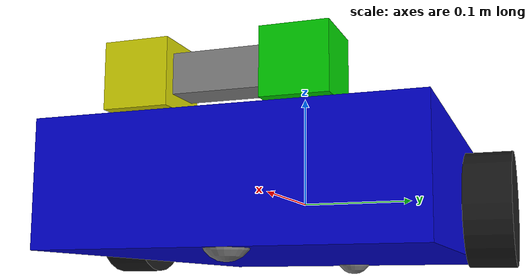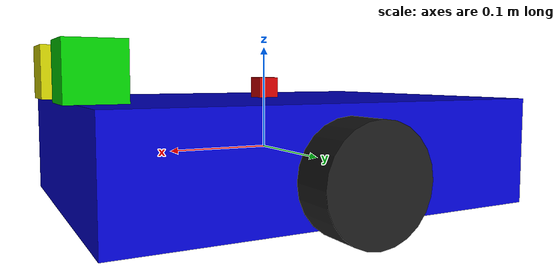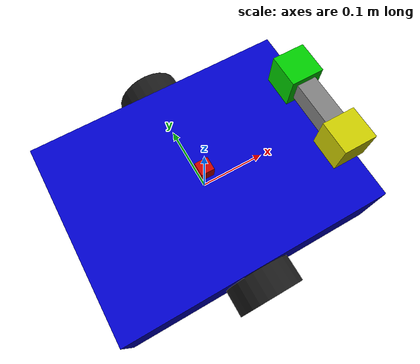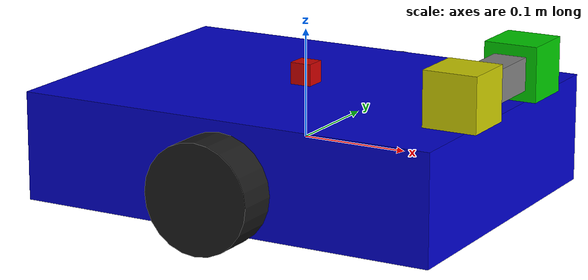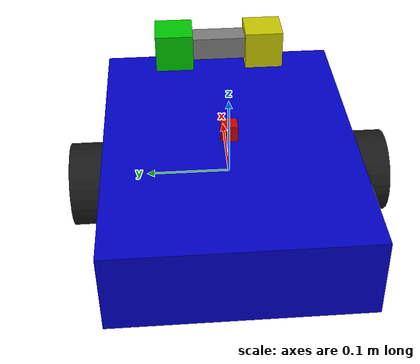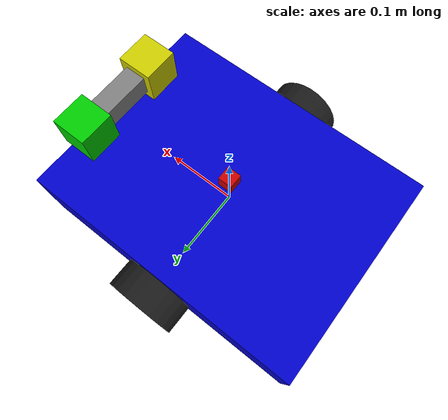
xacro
<?xml version="1.0"?>
<robot xmlns:xacro="http://www.ros.org/wiki/xacro" name="stereo_diff_drive_robot">

    <!-- Constants — add stereo_baseline here -->
    <xacro:property name="M_PI"             value="3.1415926535897931"/>
    <xacro:property name="base_width"       value="0.3"/>
    <xacro:property name="base_length"      value="0.4"/>
    <xacro:property name="base_height"      value="0.1"/>
    <xacro:property name="wheel_radius"     value="0.05"/>
    <xacro:property name="wheel_width"      value="0.04"/>
    <xacro:property name="caster_radius"    value="0.02"/>
    <xacro:property name="base_lift"        value="0.01"/>
    <xacro:property name="camera_link_size" value="0.05"/>
    <xacro:property name="imu_link_size"    value="0.02"/>
    <!-- TODO: add stereo_baseline property (12 cm) -->
    <xacro:property name="stereo_baseline"  value="0.12"/>

    <!-- Base Link -->
    <link name="base_link">
        <visual>
            <geometry>
                <box size="${base_length} ${base_width} ${base_height}"/>
            </geometry>
            <material name="blue">
                <color rgba="0.0 0.0 0.8 1.0"/>
            </material>
        </visual>
        <collision>
            <geometry>
                <box size="${base_length} ${base_width} ${base_height}"/>
            </geometry>
        </collision>
        <inertial>
            <origin xyz="0 0 0" rpy="0 0 0"/>
            <mass value="5.0"/>
            <inertia ixx="0.1" ixy="0.0" ixz="0.0" iyy="0.1" iyz="0.0" izz="0.1"/>
        </inertial>
    </link>

    <!-- IMU Link -->
    <link name="imu_link">
        <visual>
            <geometry>
                <box size="${imu_link_size} ${imu_link_size} ${imu_link_size}"/>
            </geometry>
            <material name="red">
                <color rgba="0.8 0.0 0.0 1.0"/>
            </material>
        </visual>
        <collision>
            <geometry>
                <box size="${imu_link_size} ${imu_link_size} ${imu_link_size}"/>
            </geometry>
        </collision>
        <inertial>
            <mass value="0.01"/>
            <inertia ixx="1e-6" ixy="0.0" ixz="0.0" iyy="1e-6" iyz="0.0" izz="1e-6"/>
        </inertial>
    </link>

    <joint name="imu_joint" type="fixed">
        <parent link="base_link"/>
        <child link="imu_link"/>
        <origin xyz="0 0 ${base_height/2 + imu_link_size/2}" rpy="0 0 0"/>
    </joint>

    <link name="camera_mount_link">
        <visual>
            <geometry>
                <box size="0.03 ${stereo_baseline + 0.04} 0.03"/>
            </geometry>
            <material name="grey">
                <color rgba="0.5 0.5 0.5 1.0"/>
            </material>
        </visual>
        <collision>
            <geometry>
                <box size="0.03 ${stereo_baseline + 0.04} 0.03"/>
            </geometry>
        </collision>
        <inertial>
            <mass value="0.1"/>
            <inertia ixx="1e-5" ixy="0.0" ixz="0.0" iyy="1e-5" iyz="0.0" izz="1e-5"/>
        </inertial>
    </link>

    <joint name="camera_mount_joint" type="fixed">
        <parent link="base_link"/>
        <child link="camera_mount_link"/>
        <origin xyz="${base_length/2 - 0.03/2} 0 ${base_height/2 + camera_link_size/2}" rpy="0 0 0"/>
    </joint>

    <!-- Left camera -->
    <link name="left_camera_link">
        <visual>
            <geometry>
                <box size="${camera_link_size} ${camera_link_size} ${camera_link_size}"/>
            </geometry>
            <material name="green">
                <color rgba="0.0 0.8 0.0 1.0"/>
            </material>
        </visual>
        <collision>
            <geometry>
                <box size="${camera_link_size} ${camera_link_size} ${camera_link_size}"/>
            </geometry>
        </collision>
        <inertial>
            <mass value="0.1"/>
            <inertia ixx="1e-6" ixy="0.0" ixz="0.0" iyy="1e-6" iyz="0.0" izz="1e-6"/>
        </inertial>
    </link>

    <joint name="left_camera_joint" type="fixed">
        <parent link="camera_mount_link"/>
        <child link="left_camera_link"/>
        <origin xyz="0 ${stereo_baseline/2} 0" rpy="0 0 0"/>
    </joint>

    <link name="left_camera_optical_frame"/>
    <joint name="left_camera_optical_joint" type="fixed">
        <parent link="left_camera_link"/>
        <child link="left_camera_optical_frame"/>
        <origin xyz="0 0 0" rpy="${-M_PI/2} 0 ${-M_PI/2}"/>
    </joint>

    <!-- Right camera -->
    <link name="right_camera_link">
        <visual>
            <geometry>
                <box size="${camera_link_size} ${camera_link_size} ${camera_link_size}"/>
            </geometry>
            <material name="yellow">
                <color rgba="0.8 0.8 0.0 1.0"/>
            </material>
        </visual>
        <collision>
            <geometry>
                <box size="${camera_link_size} ${camera_link_size} ${camera_link_size}"/>
            </geometry>
        </collision>
        <inertial>
            <mass value="0.1"/>
            <inertia ixx="1e-6" ixy="0.0" ixz="0.0" iyy="1e-6" iyz="0.0" izz="1e-6"/>
        </inertial>
    </link>

    <joint name="right_camera_joint" type="fixed">
        <parent link="camera_mount_link"/>
        <child link="right_camera_link"/>
        <origin xyz="0 ${-stereo_baseline/2} 0" rpy="0 0 0"/>
    </joint>

    <link name="right_camera_optical_frame"/>
    <joint name="right_camera_optical_joint" type="fixed">
        <parent link="right_camera_link"/>
        <child link="right_camera_optical_frame"/>
        <origin xyz="0 0 0" rpy="${-M_PI/2} 0 ${-M_PI/2}"/>
    </joint>

    <!-- Wheels -->

    <xacro:macro name="wheel" params="prefix reflect">
        <link name="${prefix}_wheel_link">
            <visual>
                <origin xyz="0 0 0" rpy="${M_PI/2} 0 0"/>
                <geometry>
                    <cylinder radius="${wheel_radius}" length="${wheel_width}"/>
                </geometry>
                <material name="black">
                    <color rgba="0.1 0.1 0.1 1.0"/>
                </material>
            </visual>
            <collision>
                <origin xyz="0 0 0" rpy="${M_PI/2} 0 0"/>
                <geometry>
                    <cylinder radius="${wheel_radius}" length="${wheel_width}"/>
                </geometry>
            </collision>
            <inertial>
                <mass value="1.0"/>
                <inertia ixx="0.01" ixy="0.0" ixz="0.0" iyy="0.01" iyz="0.0" izz="0.01"/>
            </inertial>
        </link>

        <joint name="${prefix}_wheel_joint" type="continuous">
            <parent link="base_link"/>
            <child link="${prefix}_wheel_link"/>
            <origin xyz="0 ${reflect*(base_width/2 + wheel_width/2)} ${-(base_height/2) + wheel_radius - base_lift}" rpy="0 0 0"/>
            <axis xyz="0 1 0"/>
        </joint>
    </xacro:macro>

    <xacro:wheel prefix="left"  reflect="1"/>
    <xacro:wheel prefix="right" reflect="-1"/>

    <!-- Casters -->
    <xacro:macro name="caster" params="prefix x_offset">
        <link name="${prefix}_caster_link">
            <visual>
                <geometry>
                    <sphere radius="${caster_radius}"/>
                </geometry>
                <material name="grey">
                    <color rgba="0.5 0.5 0.5 1.0"/>
                </material>
            </visual>
            <collision>
                <geometry>
                    <sphere radius="${caster_radius}"/>
                </geometry>
                <surface>
                    <friction>
                        <ode>
                            <mu>0.0</mu>
                            <mu2>0.0</mu2>
                            <slip1>1.0</slip1>
                            <slip2>1.0</slip2>
                        </ode>
                    </friction>
                </surface>
            </collision>
            <inertial>
                <mass value="0.5"/>
                <inertia ixx="0.001" ixy="0.0" ixz="0.0" iyy="0.001" iyz="0.0" izz="0.001"/>
            </inertial>
        </link>

        <joint name="${prefix}_caster_joint" type="fixed">
            <parent link="base_link"/>
            <child link="${prefix}_caster_link"/>
            <origin xyz="${x_offset} 0 ${-(base_height/2) + caster_radius - base_lift}" rpy="0 0 0"/>
        </joint>

        <gazebo reference="${prefix}_caster_link">
            <material>Gazebo/Grey</material>
            <mu1>0.0</mu1>
            <mu2>0.0</mu2>
            <slip1>1.0</slip1>
            <slip2>1.0</slip2>
        </gazebo>
    </xacro:macro>

    <xacro:caster prefix="front" x_offset="${base_length/2  - caster_radius}"/>
    <xacro:caster prefix="rear"  x_offset="${-base_length/2 + caster_radius}"/>

    <!-- Gazebo Materials -->
    <gazebo reference="base_link">             <material>Gazebo/White</material>   </gazebo>
    <gazebo reference="imu_link">              <material>Gazebo/Red</material>    </gazebo>
    <gazebo reference="left_wheel_link">       <material>Gazebo/Black</material>  </gazebo>
    <gazebo reference="right_wheel_link">      <material>Gazebo/Black</material>  </gazebo>
    <!-- TODO: add Gazebo materials for camera_mount_link, left_camera_link, right_camera_link -->
    <gazebo reference="camera_mount_link">     <material>Gazebo/Pink</material>   </gazebo>
    <gazebo reference="left_camera_link">      <material>Gazebo/Red</material>  </gazebo>
    <gazebo reference="right_camera_link">     <material>Gazebo/Blue</material> </gazebo>

    <!-- Differential Drive Plugin -->
    <gazebo>
        <plugin name="differential_drive_controller" filename="libgazebo_ros_diff_drive.so">
            <ros/>
            <update_rate>100</update_rate>
            <left_joint>left_wheel_joint</left_joint>
            <right_joint>right_wheel_joint</right_joint>
            <wheel_separation>${base_width + wheel_width}</wheel_separation>
            <wheel_diameter>${2*wheel_radius}</wheel_diameter>
            <max_wheel_torque>20</max_wheel_torque>
            <max_wheel_acceleration>1.0</max_wheel_acceleration>
            <odometry_frame>odom</odometry_frame>
            <robot_base_frame>base_link</robot_base_frame>
            <publish_odom>true</publish_odom>
            <publish_odom_tf>true</publish_odom_tf>
            <publish_wheel_tf>true</publish_wheel_tf>
            <publish_joint_states>true</publish_joint_states>
            <publish_tf>true</publish_tf>
        </plugin>
    </gazebo>

    <!-- IMU Plugin -->
    <gazebo reference="imu_link">
        <sensor name="imu_sensor" type="imu">
            <always_on>true</always_on>
            <update_rate>100</update_rate>
            <visualize>false</visualize>
            <plugin name="imu_plugin" filename="libgazebo_ros_imu_sensor.so">
                <ros>
                    <remapping>~/out:=imu/data</remapping>
                </ros>
                <initial_orientation_as_reference>false</initial_orientation_as_reference>
                <frame_name>imu_link</frame_name>
            </plugin>
            <pose>0 0 0 0 0 0</pose>
        </sensor>
    </gazebo>

    <!-- TODO: Left Camera Gazebo Plugin -->
    <gazebo reference="left_camera_link">
        <sensor type="camera" name="left_camera">
            <always_on>true</always_on>
            <update_rate>20.0</update_rate>
            <camera name="left_sim_camera">
                <horizontal_fov>${60.0*M_PI/180.0}</horizontal_fov>
                <image>
                    <width>640</width>
                    <height>480</height>
                    <format>R8G8B8</format>
                </image>
                <clip>
                    <near>0.1</near>
                    <far>10.0</far>
                </clip>
                <noise>
                    <type>gaussian</type>
                    <mean>0.0</mean>
                    <stddev>0.007</stddev>
                </noise>
            </camera>
            <plugin name="left_camera_plugin" filename="libgazebo_ros_camera.so">
                <ros>
                    <namespace>stereo</namespace>
                    <remapping>image_raw:=left/image_raw</remapping>
                    <remapping>camera_info:=left/camera_info</remapping>
                </ros>
                <camera_name>left_camera</camera_name>
                <frame_name>left_camera_optical_frame</frame_name>
                <hack_baseline>0.0</hack_baseline>
            </plugin>
        </sensor>
    </gazebo>

    <!-- TODO: Right Camera Gazebo Plugin -->
    <gazebo reference="right_camera_link">
        <sensor type="camera" name="right_camera">
            <always_on>true</always_on>
            <update_rate>20.0</update_rate>
            <camera name="right_sim_camera">
                <horizontal_fov>${60.0*M_PI/180.0}</horizontal_fov>
                <image>
                    <width>640</width>
                    <height>480</height>
                    <format>R8G8B8</format>
                </image>
                <clip>
                    <near>0.1</near>
                    <far>10.0</far>
                </clip>
                <noise>
                    <type>gaussian</type>
                    <mean>0.0</mean>
                    <stddev>0.007</stddev>
                </noise>
            </camera>
            <plugin name="right_camera_plugin" filename="libgazebo_ros_camera.so">
                <ros>
                    <namespace>stereo</namespace>
                    <remapping>image_raw:=right/image_raw</remapping>
                    <remapping>camera_info:=right/camera_info</remapping>
                </ros>
                <camera_name>right_camera</camera_name>
                <frame_name>right_camera_optical_frame</frame_name>
                <hack_baseline>${stereo_baseline}</hack_baseline>
            </plugin>
        </sensor>
    </gazebo>

</robot>
